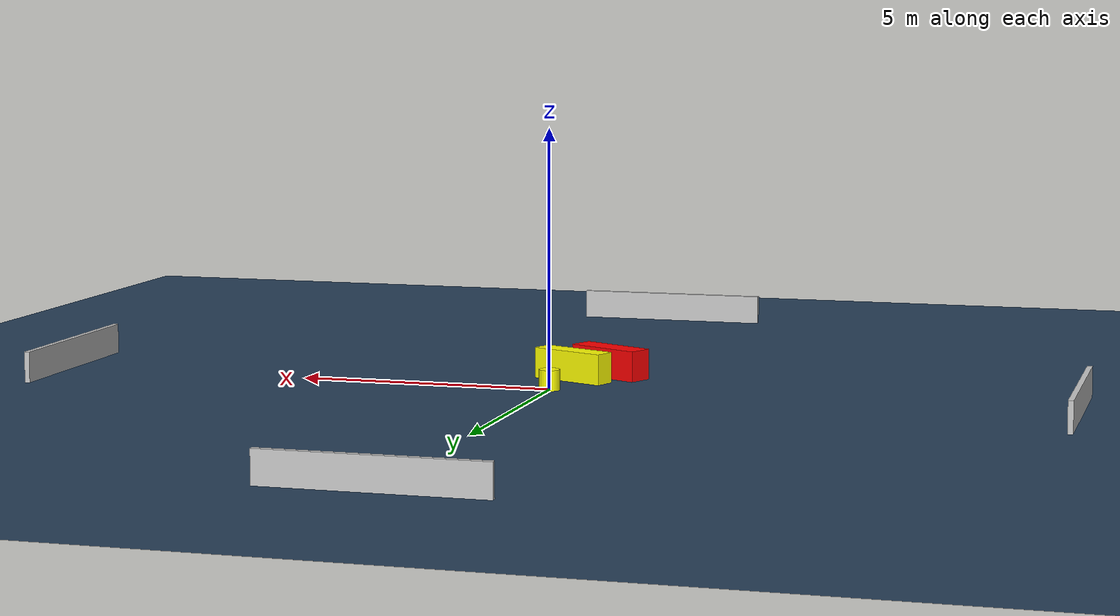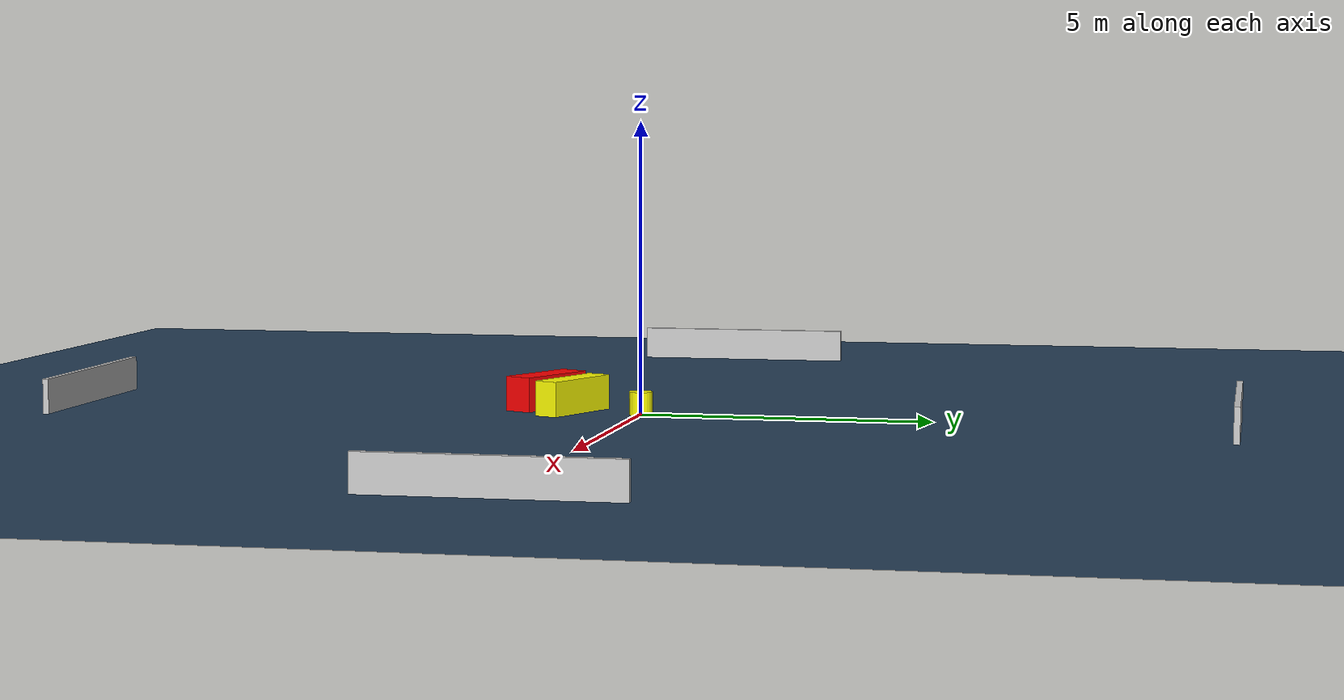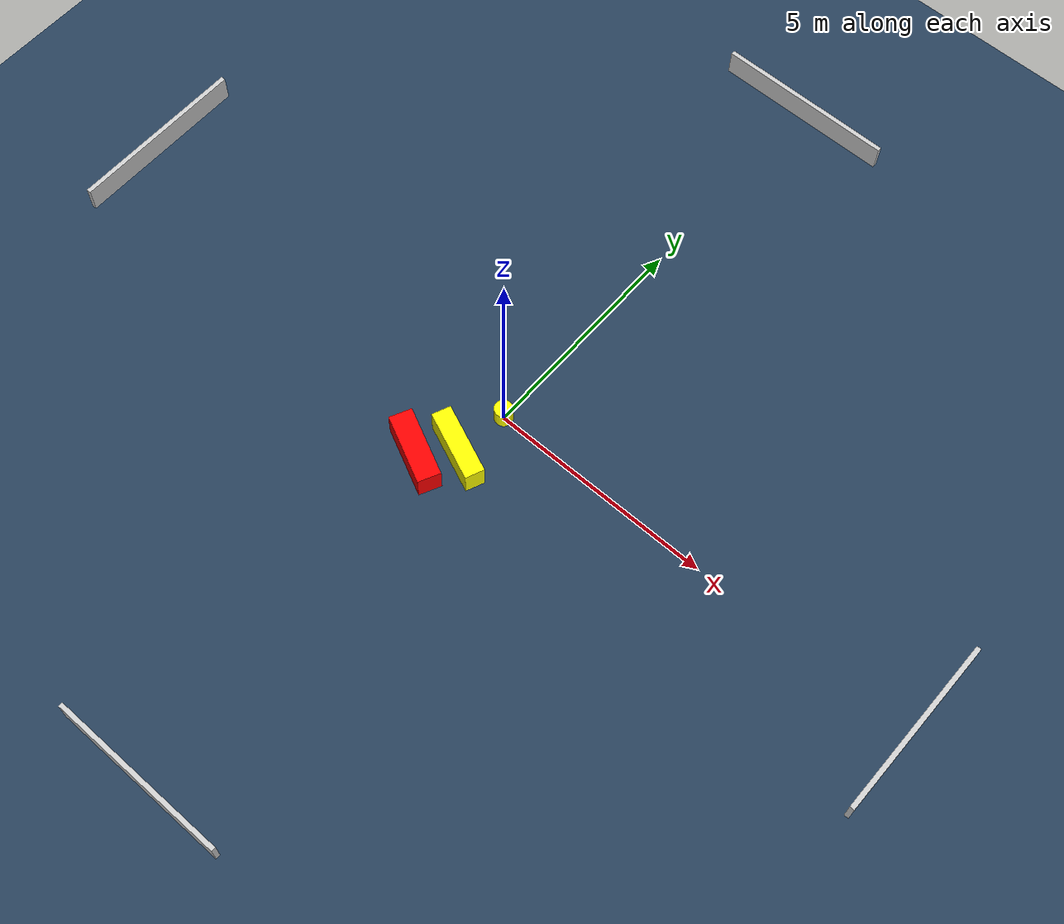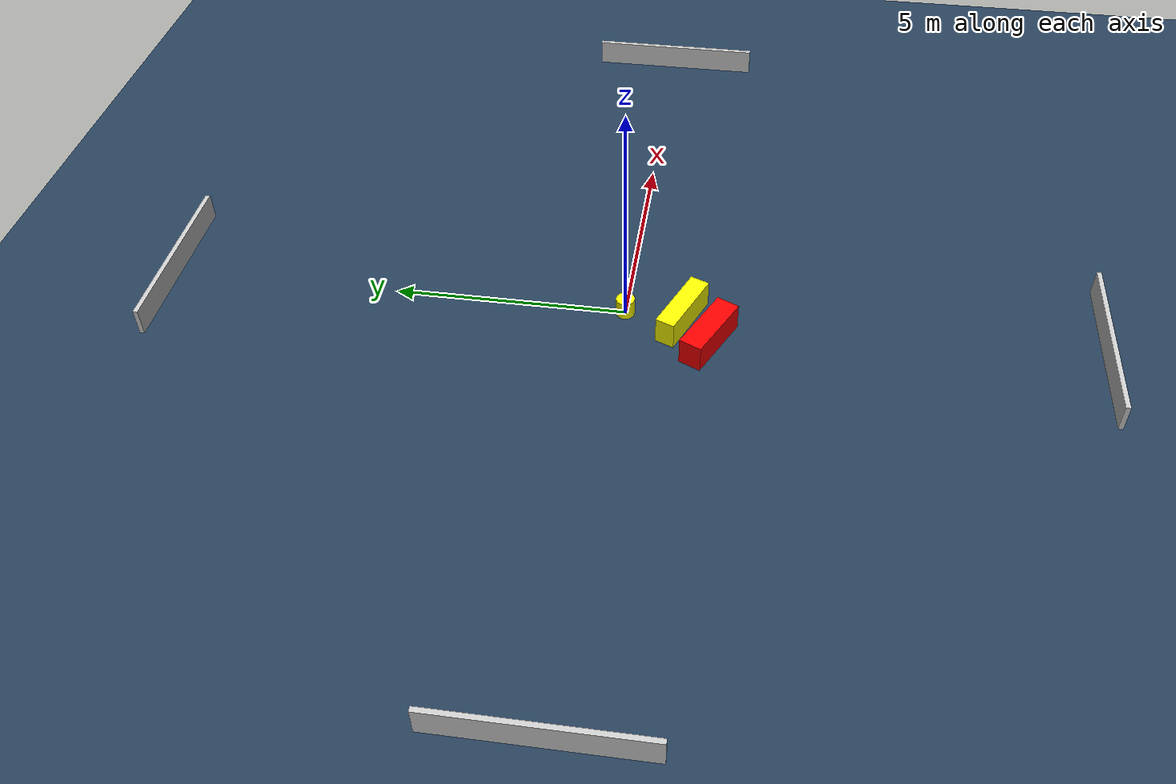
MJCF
<?xml version="1.0" ?>
<mujoco model="generated_environment">
  <option timestep="0.01" integrator="RK4" cone="elliptic"/>
  <default>
    <geom density="1"/>
  </default>
  <asset>
    <texture builtin="gradient" height="3072" name="skybox" rgb1="0.3 0.5 0.7" rgb2="0 0 0" type="skybox" width="512"/>
    <texture builtin="checker" height="300" name="groundplane" rgb1="0.2 0.3 0.4" rgb2="0.1 0.2 0.3" type="2d" width="300"/>
    <material name="groundplane" reflectance="0.2" texrepeat="5 5" texture="groundplane"/>
  </asset>
  <worldbody>
    <light dir="0 0 -1" directional="true" pos="0 0 1.5"/>
    <geom condim="3" friction="0.5 0.005 0.001" material="groundplane" name="floor" pos="0 0 0" size="0 0 0.05" type="plane"/>
    <body name="walls">
      <geom name="wall_1" condim="4" pos="-10.0 0.0 0.3" rgba="0.800000011920929 0.800000011920929 0.800000011920929 1.0" size="0.05 2.0 0.3" type="box"/>
      <geom name="wall_2" condim="4" pos="10.0 0.0 0.3" rgba="0.800000011920929 0.800000011920929 0.800000011920929 1.0" size="0.05 2.0 0.3" type="box"/>
      <geom name="wall_3" condim="4" pos="0.0 -10.0 0.3" rgba="0.800000011920929 0.800000011920929 0.800000011920929 1.0" size="2.0 0.05 0.3" type="box"/>
      <geom name="wall_4" condim="4" pos="0.0 10.0 0.3" rgba="0.800000011920929 0.800000011920929 0.800000011920929 1.0" size="2.0 0.05 0.3" type="box"/>
    </body>
    <body name="robot">
      <joint name="joint_x" type="slide" pos="0 0 0" axis="1 0 0"/>
      <joint name="joint_y" type="slide" pos="0 0 0" axis="0 1 0"/>
      <geom name="robot" type="cylinder" pos="0.0 0.0 0.2" size="0.2 0.2 0.0" mass="5.0" friction="1.0 0.005 0.0001" condim="4" rgba="1.0 1.0 0.0 1.0"/>
    </body>
    <body name="obstacle_1_movable">
      <geom name="obstacle_1_movable" condim="4" pos="-0.12453661321394104 -1.228323726545088 0.3" euler="0 0 337.3615391236181" friction="0.0 0.005 0.001" rgba="1.0 1.0 0.0 1.0" size="0.7806218709120225 0.21244054342403254 0.3" type="box" mass="0.1"/>
      <joint type="free"/>
    </body>
    <body name="obstacle_2_static">
      <geom name="obstacle_2_static" condim="4" pos="-0.7159842634369886 -1.8413052589096353 0.3" euler="0 0 334.34759420955135" friction="0.0 0.005 0.001" rgba="1.0 0.0 0.0 1.0" size="0.7736907677445799 0.2513649139571909 0.3" type="box"/>
    </body>
  </worldbody>
  <actuator>
    <motor name="actuator_x" joint="joint_x" gear="1" ctrlrange="-1 1"/>
    <motor name="actuator_y" joint="joint_y" gear="1" ctrlrange="-1 1"/>
  </actuator>
</mujoco>
